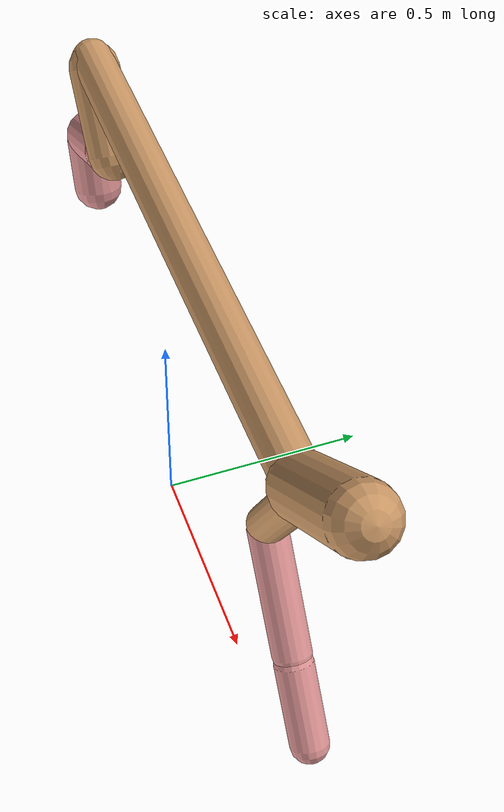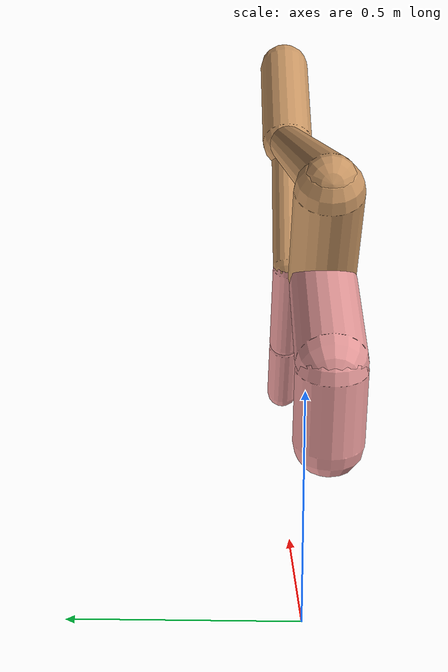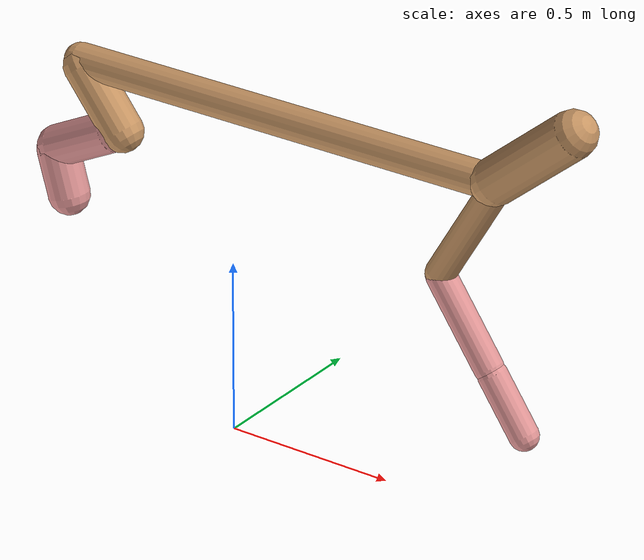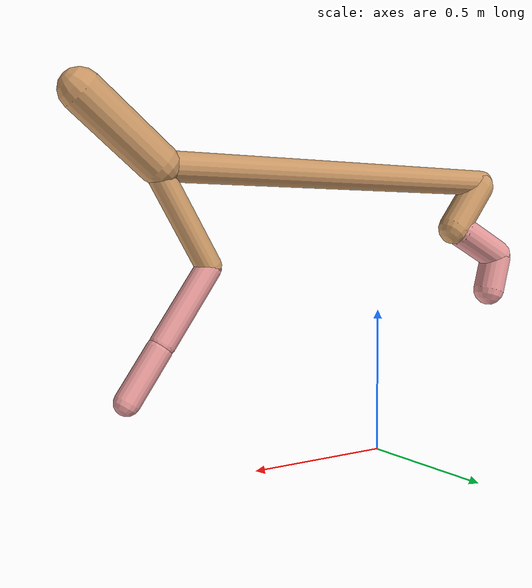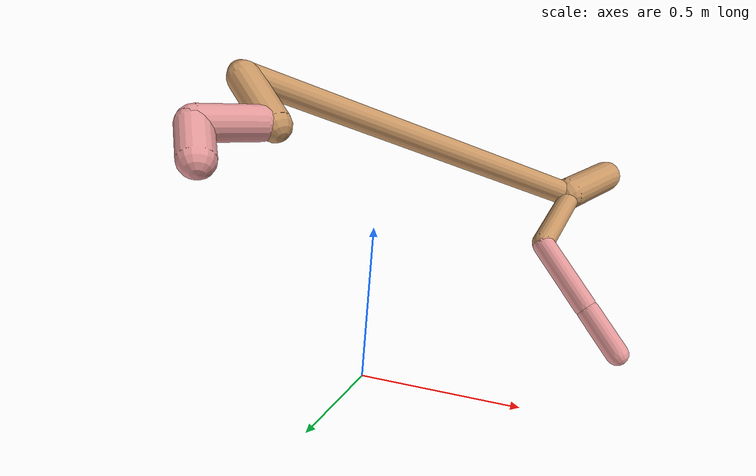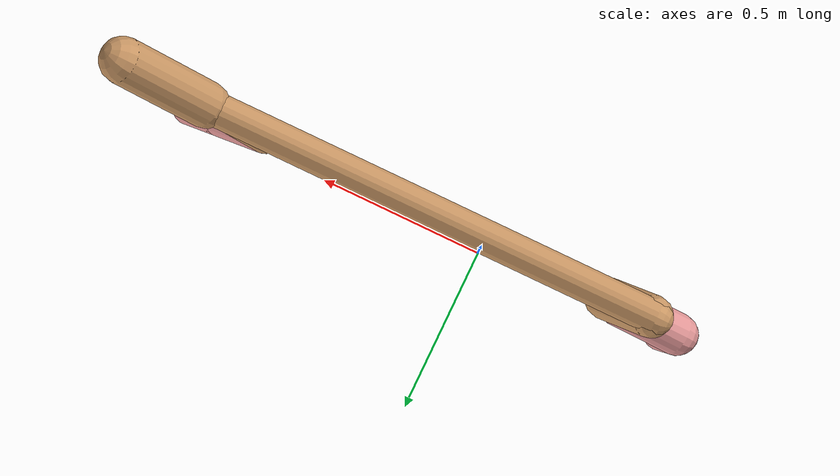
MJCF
<mujoco model="cheetah">
  <compiler angle="radian" coordinate="local" inertiafromgeom="true" settotalmass="14" />
  <default>
    <joint armature=".1" damping=".01" limited="true" solimplimit="0 .8 .03" solreflimit=".02 1" stiffness="8" />
    <geom conaffinity="0" condim="3" contype="1" friction="0.8 .1 .1" rgba="0.8 0.6 .4 1" solimp="0.0 0.8 0.01" solref="0.02 1" />
    <motor ctrllimited="true" ctrlrange="-1 1" />
  </default>
  <size nstack="300000" nuser_geom="1" />
  <option gravity="0 0 -9.81" timestep="0.01" />
  <worldbody>
    <body name="torso" pos="0.0 0.0 0.9658561359886587">
      <joint armature="0" axis="1 0 0" damping="0" limited="false" name="ignorex" pos="0 0 0" stiffness="0" type="slide" />
      <joint armature="0" axis="0 0 1" damping="0" limited="false" name="ignorez" pos="0 0 0" stiffness="0" type="slide" />
      <joint armature="0" axis="0 1 0" damping="0" limited="false" name="ignorey" pos="0 0 0" stiffness="0" type="hinge" />
      <geom fromto="-0.5 0.0 0.0 0.8355954445154123 0.0 0.0" name="torso" size="0.0471681453303344" type="capsule" />
      <geom axisangle="0 1 0 .87" name="head" pos="0.9355954445154123 0.0 0.1" size="0.06431078483163574 0.15" type="capsule" />

      <body name="bthigh" pos="-.5 0 0">
        <joint axis="0 1 0" damping="6" name="bthigh" pos="0 0 0" range="-.52 1.05" stiffness="240" type="hinge" />
        <geom axisangle="0 1 0 -3.8" name="bthigh" pos="0.0734775819030384 0.0 -0.0955208564739499" size="0.058910880003680235 0.10149999999999999" type="capsule" />
        <body name="bshin" pos="0.10695516380607678 0.0 -0.18104171294789978">
          <joint axis="0 1 0" damping="4.5" name="bshin" pos="0 0 0" range="-.785 .785" stiffness="180" type="hinge" />
          <geom axisangle="0 1 0 -2.03" name="bshin" pos="-0.0997507764050038 0.0 -0.0498753882025019" rgba="0.9 0.6 0.6 1" size="0.058910880003680235 0.105" type="capsule" />
          <body name="bfoot" pos="-0.1995015528100076 0.0 -0.0997507764050038">
            <joint axis="0 1 0" damping="3" name="bfoot" pos="0 0 0" range="-.4 .785" stiffness="120" type="hinge" />
            <geom axisangle="0 1 0 -.27" name="bfoot" pos="0.021667753813597694 0.0 -0.07005907066396588" rgba="0.9 0.6 0.6 1" size="0.058910880003680235 0.0658" type="capsule" />
            <inertial mass="10" />
          </body>
        </body>
      </body>
      <body name="fthigh" pos="0.8355954445154123 0.0 0.0">
        <joint axis="0 1 0" damping="4.5" name="fthigh" pos="0 0 0" range="-1.5 0.8" stiffness="180" type="hinge" />
        <geom axisangle="0 1 0 .52" name="fthigh" pos="-0.08863630556105583 0.0 -0.1519479523903814" size="0.04094325694174034 0.16998626159674857" type="capsule" />
        <body name="fshin" pos="-0.17727261112211165 0.0 -0.3038959047807628">
          <joint axis="0 1 0" damping="3" name="fshin" pos="0 0 0" range="-1.2 1.1" stiffness="120" type="hinge" />
          <geom axisangle="0 1 0 -.6" name="fshin" pos="0.0822589572888176 0.0 -0.11389701778451666" rgba="0.9 0.6 0.6 1" size="0.04094325694174034 0.13547777240041614" type="capsule" />
          <body name="ffoot" pos="0.1645179145776352 0.0 -0.22779403556903333">
            <joint axis="0 1 0" damping="1.5" name="ffoot" pos="0 0 0" range="-3.1 -0.3" stiffness="60" type="hinge" />
            <geom axisangle="0 1 0 -.6" name="ffoot" pos="0.055526632490920366 0.0 -0.0863747616525428" rgba="0.9 0.6 0.6 1" size="0.04094325694174034 0.08946645347197293" type="capsule" />
            <inertial mass="10" />
          </body>
        </body>
      </body>
    </body>
  </worldbody>
  <actuator>
    <motor gear="120" joint="bthigh" name="bthigh" />
    <motor gear="90" joint="bshin" name="bshin" />
    <motor gear="60" joint="bfoot" name="bfoot" />
    <motor gear="120" joint="fthigh" name="fthigh" />
    <motor gear="60" joint="fshin" name="fshin" />
    <motor gear="30" joint="ffoot" name="ffoot" />
  </actuator>
</mujoco>
